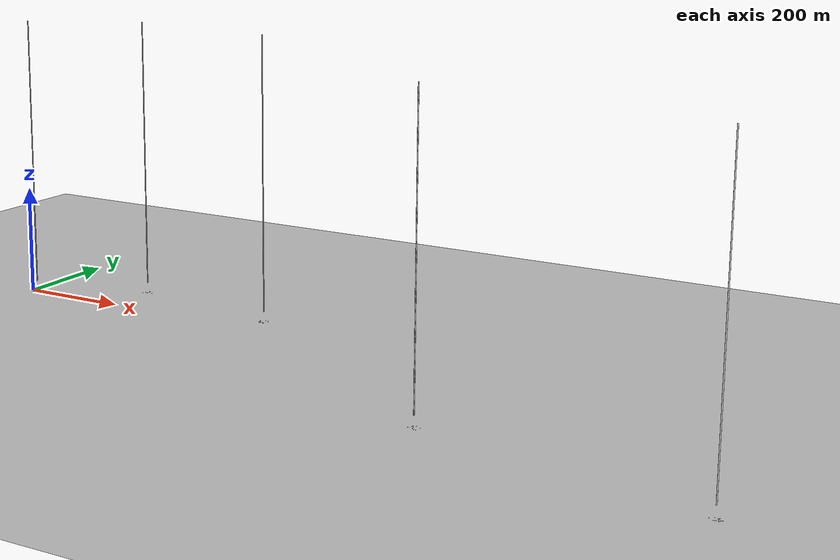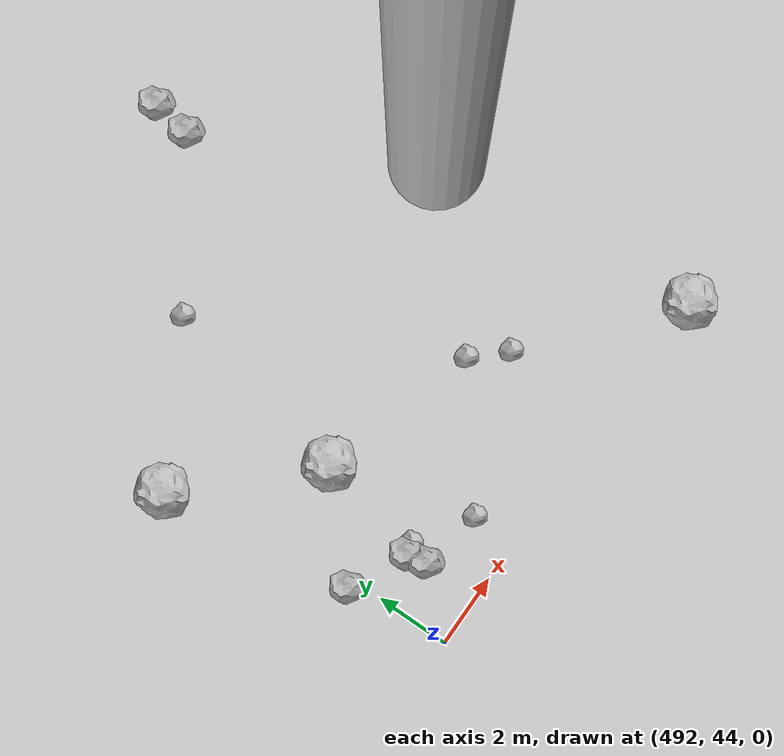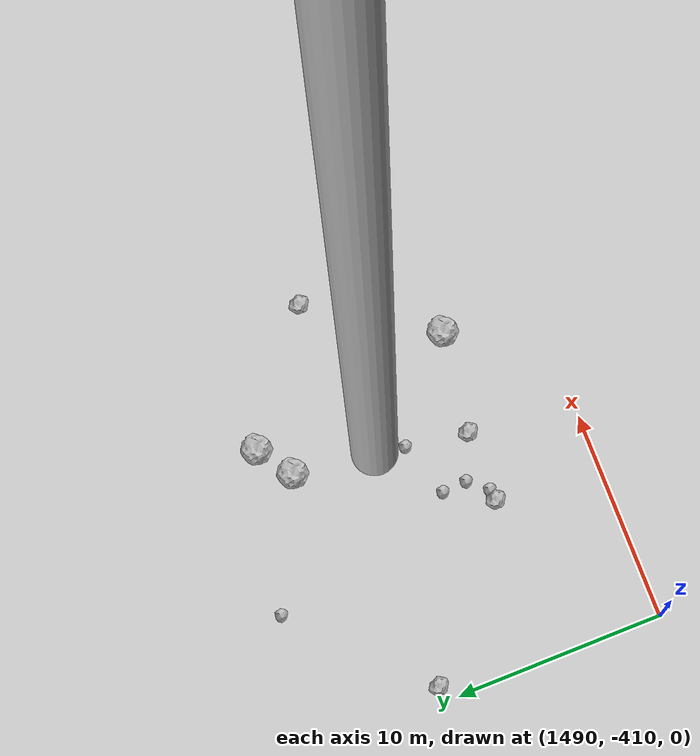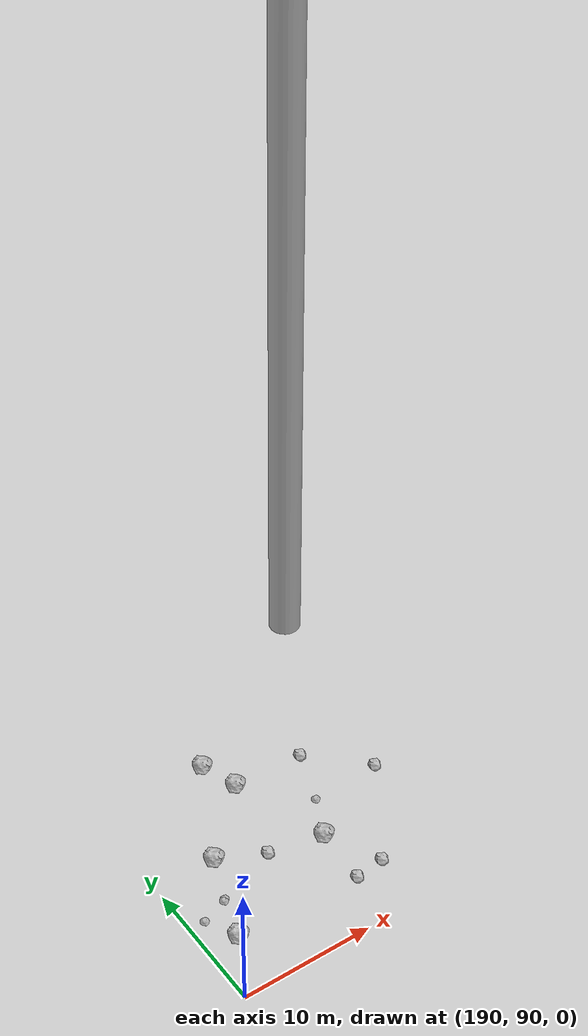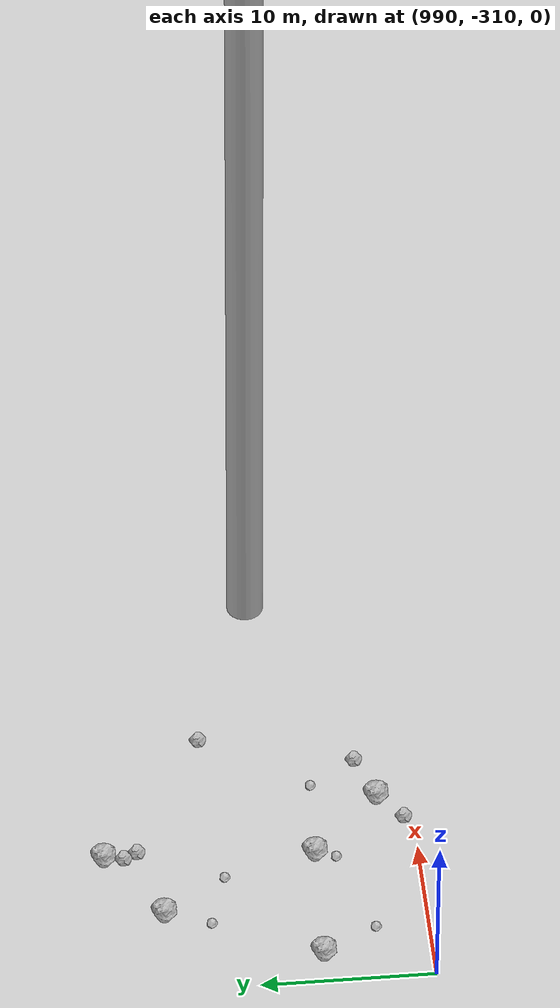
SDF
<?xml version="1.0" ?>
<sdf version="1.6">
  <world name="default">

    <include>
      <uri>model://custom_ground</uri>
    </include>

    <include>
      <uri>model://sun</uri>
    </include>

    <spherical_coordinates>
      <surface_model>EARTH_WGS84</surface_model>
      <latitude_deg>38.161479</latitude_deg>
      <longitude_deg>-122.454630</longitude_deg>
      <elevation>488.0</elevation>
      <heading_deg>90</heading_deg>
    </spherical_coordinates>

    <model name="rock1_0_0">
      <include>
        <uri>model://rock1</uri>
        <pose>1.847624893492319 -2.6303471239223057 0.5 0 0 0</pose>
      </include>
    </model>
    <model name="rock1_0_1">
      <include>
        <uri>model://rock1</uri>
        <pose>9.008583903541377 -9.185290051601374 0.5 0 0 0</pose>
      </include>
    </model>
    <model name="rock1_0_2">
      <include>
        <uri>model://rock1</uri>
        <pose>15.669937923732544 -5.1172285593576365 0.5 0 0 0</pose>
      </include>
    </model>
    <model name="rock1_0_3">
      <include>
        <uri>model://rock1</uri>
        <pose>5.000161576270186 -7.041355510667442 0.5 0 0 0</pose>
      </include>
    </model>
    <model name="rock1_0_4">
      <include>
        <uri>model://rock1</uri>
        <pose>11.049892212072344 5.825297447228763 0.5 0 0 0</pose>
      </include>
    </model>
    <model name="rock2_0_0">
      <include>
        <uri>model://rock2</uri>
        <pose>16.454082541111664 0.10624525727924983 0.3 0 0 0</pose>
      </include>
    </model>
    <model name="rock2_0_1">
      <include>
        <uri>model://rock2</uri>
        <pose>4.977025990394179 -0.059792357439778954 0.3 0 0 0</pose>
      </include>
    </model>
    <model name="rock2_0_2">
      <include>
        <uri>model://rock2</uri>
        <pose>16.862069681529366 0.30964639470345645 0.3 0 0 0</pose>
      </include>
    </model>
    <model name="rock2_0_3">
      <include>
        <uri>model://rock2</uri>
        <pose>19.00902730430467 -3.0329334566437733 0.3 0 0 0</pose>
      </include>
    </model>
    <model name="rock2_0_4">
      <include>
        <uri>model://rock2</uri>
        <pose>12.39956895667898 7.287267485126378 0.3 0 0 0</pose>
      </include>
    </model>
    <model name="rock3_0_0">
      <include>
        <uri>model://rock3</uri>
        <pose>14.769544572731373 -4.103665230971676 0.2 0 0 0</pose>
      </include>
    </model>
    <model name="rock3_0_1">
      <include>
        <uri>model://rock3</uri>
        <pose>7.274592004736036 7.151699748732241 0.2 0 0 0</pose>
      </include>
    </model>
    <model name="rock3_0_2">
      <include>
        <uri>model://rock3</uri>
        <pose>4.424943852647125 0.3419693925517979 0.2 0 0 0</pose>
      </include>
    </model>
    <model name="rock3_0_3">
      <include>
        <uri>model://rock3</uri>
        <pose>1.0667856122183172 2.873831579388071 0.2 0 0 0</pose>
      </include>
    </model>
    <model name="rock3_0_4">
      <include>
        <uri>model://rock3</uri>
        <pose>13.246002871547066 7.901397685399655 0.2 0 0 0</pose>
      </include>
    </model>
    <model name="rock1_1_0">
      <include>
        <uri>model://rock1</uri>
        <pose>194.664354609973 100.64466646623175 0.5 0 0 0</pose>
      </include>
    </model>
    <model name="rock1_1_1">
      <include>
        <uri>model://rock1</uri>
        <pose>202.19994997514422 98.15291370395585 0.5 0 0 0</pose>
      </include>
    </model>
    <model name="rock1_1_2">
      <include>
        <uri>model://rock1</uri>
        <pose>192.37797937840142 94.18973639324409 0.5 0 0 0</pose>
      </include>
    </model>
    <model name="rock1_1_3">
      <include>
        <uri>model://rock1</uri>
        <pose>198.7196898163804 108.37296060081385 0.5 0 0 0</pose>
      </include>
    </model>
    <model name="rock1_1_4">
      <include>
        <uri>model://rock1</uri>
        <pose>199.69300903419634 105.50620538462415 0.5 0 0 0</pose>
      </include>
    </model>
    <model name="rock2_1_0">
      <include>
        <uri>model://rock2</uri>
        <pose>198.02481134053994 99.08673959093537 0.3 0 0 0</pose>
      </include>
    </model>
    <model name="rock2_1_1">
      <include>
        <uri>model://rock2</uri>
        <pose>204.16463653267846 94.14965391687505 0.3 0 0 0</pose>
      </include>
    </model>
    <model name="rock2_1_2">
      <include>
        <uri>model://rock2</uri>
        <pose>209.06963544717797 101.55360941788055 0.3 0 0 0</pose>
      </include>
    </model>
    <model name="rock2_1_3">
      <include>
        <uri>model://rock2</uri>
        <pose>201.852689926347 93.8651914882996 0.3 0 0 0</pose>
      </include>
    </model>
    <model name="rock2_1_4">
      <include>
        <uri>model://rock2</uri>
        <pose>205.18001816557387 105.41128549780441 0.3 0 0 0</pose>
      </include>
    </model>
    <model name="rock3_1_0">
      <include>
        <uri>model://rock3</uri>
        <pose>193.31276235585105 97.35735550706984 0.2 0 0 0</pose>
      </include>
    </model>
    <model name="rock3_1_1">
      <include>
        <uri>model://rock3</uri>
        <pose>203.65573078288168 101.24920850816196 0.2 0 0 0</pose>
      </include>
    </model>
    <model name="rock3_1_2">
      <include>
        <uri>model://rock3</uri>
        <pose>193.20947857541142 97.2554920281937 0.2 0 0 0</pose>
      </include>
    </model>
    <model name="rock3_1_3">
      <include>
        <uri>model://rock3</uri>
        <pose>191.16434467650694 96.51267050478546 0.2 0 0 0</pose>
      </include>
    </model>
    <model name="rock3_1_4">
      <include>
        <uri>model://rock3</uri>
        <pose>199.88065659750686 105.952205609244 0.2 0 0 0</pose>
      </include>
    </model>
    <model name="rock1_2_0">
      <include>
        <uri>model://rock1</uri>
        <pose>505.54593761639825 55.61448670322314 0.5 0 0 0</pose>
      </include>
    </model>
    <model name="rock1_2_1">
      <include>
        <uri>model://rock1</uri>
        <pose>504.18217297581174 57.3713864275379 0.5 0 0 0</pose>
      </include>
    </model>
    <model name="rock1_2_2">
      <include>
        <uri>model://rock1</uri>
        <pose>494.0988770357594 49.013264881919596 0.5 0 0 0</pose>
      </include>
    </model>
    <model name="rock1_2_3">
      <include>
        <uri>model://rock1</uri>
        <pose>491.0930304340576 52.10352055150673 0.5 0 0 0</pose>
      </include>
    </model>
    <model name="rock1_2_4">
      <include>
        <uri>model://rock1</uri>
        <pose>502.78286717460736 43.83597331519561 0.5 0 0 0</pose>
      </include>
    </model>
    <model name="rock2_2_0">
      <include>
        <uri>model://rock2</uri>
        <pose>493.4317326313458 45.59573450571534 0.3 0 0 0</pose>
      </include>
    </model>
    <model name="rock2_2_1">
      <include>
        <uri>model://rock2</uri>
        <pose>498.9690633293399 56.99410507547191 0.3 0 0 0</pose>
      </include>
    </model>
    <model name="rock2_2_2">
      <include>
        <uri>model://rock2</uri>
        <pose>499.1215442636108 58.02658110437978 0.3 0 0 0</pose>
      </include>
    </model>
    <model name="rock2_2_3">
      <include>
        <uri>model://rock2</uri>
        <pose>493.3287582269976 46.10041364949269 0.3 0 0 0</pose>
      </include>
    </model>
    <model name="rock2_2_4">
      <include>
        <uri>model://rock2</uri>
        <pose>491.7633522317268 46.86181116578269 0.3 0 0 0</pose>
      </include>
    </model>
    <model name="rock3_2_0">
      <include>
        <uri>model://rock3</uri>
        <pose>499.1133929753987 46.86907653087308 0.2 0 0 0</pose>
      </include>
    </model>
    <model name="rock3_2_1">
      <include>
        <uri>model://rock3</uri>
        <pose>495.0303354134359 54.29071716421359 0.2 0 0 0</pose>
      </include>
    </model>
    <model name="rock3_2_2">
      <include>
        <uri>model://rock3</uri>
        <pose>495.1003771429886 45.202625688037784 0.2 0 0 0</pose>
      </include>
    </model>
    <model name="rock3_2_3">
      <include>
        <uri>model://rock3</uri>
        <pose>493.60583509471275 46.1494197995776 0.2 0 0 0</pose>
      </include>
    </model>
    <model name="rock3_2_4">
      <include>
        <uri>model://rock3</uri>
        <pose>498.32064058308964 47.71811556563089 0.2 0 0 0</pose>
      </include>
    </model>
    <model name="rock1_3_0">
      <include>
        <uri>model://rock1</uri>
        <pose>995.9501168326144 -295.00678546659475 0.5 0 0 0</pose>
      </include>
    </model>
    <model name="rock1_3_1">
      <include>
        <uri>model://rock1</uri>
        <pose>1000.0154037328228 -304.01511839448074 0.5 0 0 0</pose>
      </include>
    </model>
    <model name="rock1_3_2">
      <include>
        <uri>model://rock1</uri>
        <pose>1000.5930601398452 -291.8750618586652 0.5 0 0 0</pose>
      </include>
    </model>
    <model name="rock1_3_3">
      <include>
        <uri>model://rock1</uri>
        <pose>992.1596363540878 -303.7797059235827 0.5 0 0 0</pose>
      </include>
    </model>
    <model name="rock1_3_4">
      <include>
        <uri>model://rock1</uri>
        <pose>1004.2566622584434 -307.97185454277155 0.5 0 0 0</pose>
      </include>
    </model>
    <model name="rock2_3_0">
      <include>
        <uri>model://rock2</uri>
        <pose>1000.3197815038525 -293.0133692616998 0.3 0 0 0</pose>
      </include>
    </model>
    <model name="rock2_3_1">
      <include>
        <uri>model://rock2</uri>
        <pose>1000.7513323361692 -293.80623992560385 0.3 0 0 0</pose>
      </include>
    </model>
    <model name="rock2_3_2">
      <include>
        <uri>model://rock2</uri>
        <pose>1002.3285077346109 -309.3943124177194 0.3 0 0 0</pose>
      </include>
    </model>
    <model name="rock2_3_3">
      <include>
        <uri>model://rock2</uri>
        <pose>1007.1574093582486 -306.97369785807354 0.3 0 0 0</pose>
      </include>
    </model>
    <model name="rock2_3_4">
      <include>
        <uri>model://rock2</uri>
        <pose>1009.523229085051 -298.04878541769864 0.3 0 0 0</pose>
      </include>
    </model>
    <model name="rock3_3_0">
      <include>
        <uri>model://rock3</uri>
        <pose>1005.3202940837873 -304.28591164382675 0.2 0 0 0</pose>
      </include>
    </model>
    <model name="rock3_3_1">
      <include>
        <uri>model://rock3</uri>
        <pose>994.8653662436232 -297.68095097728195 0.2 0 0 0</pose>
      </include>
    </model>
    <model name="rock3_3_2">
      <include>
        <uri>model://rock3</uri>
        <pose>998.3968924429663 -298.7068792570992 0.2 0 0 0</pose>
      </include>
    </model>
    <model name="rock3_3_3">
      <include>
        <uri>model://rock3</uri>
        <pose>999.507826884584 -305.23881009346684 0.2 0 0 0</pose>
      </include>
    </model>
    <model name="rock3_3_4">
      <include>
        <uri>model://rock3</uri>
        <pose>993.8026121967973 -306.95686906599076 0.2 0 0 0</pose>
      </include>
    </model>
    <model name="rock1_4_0">
      <include>
        <uri>model://rock1</uri>
        <pose>1507.4740139266787 -402.1261360922767 0.5 0 0 0</pose>
      </include>
    </model>
    <model name="rock1_4_1">
      <include>
        <uri>model://rock1</uri>
        <pose>1504.1080210547605 -395.5757278275644 0.5 0 0 0</pose>
      </include>
    </model>
    <model name="rock1_4_2">
      <include>
        <uri>model://rock1</uri>
        <pose>1507.9768888564129 -401.9492388575439 0.5 0 0 0</pose>
      </include>
    </model>
    <model name="rock1_4_3">
      <include>
        <uri>model://rock1</uri>
        <pose>1506.0019840568034 -405.6144015025283 0.5 0 0 0</pose>
      </include>
    </model>
    <model name="rock1_4_4">
      <include>
        <uri>model://rock1</uri>
        <pose>1502.4563756499067 -396.7178353991738 0.5 0 0 0</pose>
      </include>
    </model>
    <model name="rock2_4_0">
      <include>
        <uri>model://rock2</uri>
        <pose>1509.655691551419 -399.90631800601255 0.3 0 0 0</pose>
      </include>
    </model>
    <model name="rock2_4_1">
      <include>
        <uri>model://rock2</uri>
        <pose>1490.7925211033532 -399.3095690414662 0.3 0 0 0</pose>
      </include>
    </model>
    <model name="rock2_4_2">
      <include>
        <uri>model://rock2</uri>
        <pose>1497.8131576216567 -404.9727113229346 0.3 0 0 0</pose>
      </include>
    </model>
    <model name="rock2_4_3">
      <include>
        <uri>model://rock2</uri>
        <pose>1504.6892782053137 -401.50939653793165 0.3 0 0 0</pose>
      </include>
    </model>
    <model name="rock2_4_4">
      <include>
        <uri>model://rock2</uri>
        <pose>1501.20684167116 -404.96442246790656 0.3 0 0 0</pose>
      </include>
    </model>
    <model name="rock3_4_0">
      <include>
        <uri>model://rock3</uri>
        <pose>1501.6478538095544 -402.03484364698824 0.2 0 0 0</pose>
      </include>
    </model>
    <model name="rock3_4_1">
      <include>
        <uri>model://rock3</uri>
        <pose>1496.5245864540707 -393.823137547126 0.2 0 0 0</pose>
      </include>
    </model>
    <model name="rock3_4_2">
      <include>
        <uri>model://rock3</uri>
        <pose>1498.3466046332396 -404.92077507508026 0.2 0 0 0</pose>
      </include>
    </model>
    <model name="rock3_4_3">
      <include>
        <uri>model://rock3</uri>
        <pose>1499.1030676926396 -404.0468995154803 0.2 0 0 0</pose>
      </include>
    </model>
    <model name="rock3_4_4">
      <include>
        <uri>model://rock3</uri>
        <pose>1499.0383528106108 -402.86377139823236 0.2 0 0 0</pose>
      </include>
    </model>

    <model name="cylinder_1">
      <static>true</static>
      <link name="link">
        <visual name="visual">
          <geometry>
            <cylinder>
              <radius>1</radius>
              <length>500</length>
            </cylinder>
          </geometry>
        </visual>
      </link>
      <pose>10 0 270 0 0 0</pose>
    </model>

    <model name="cylinder_2">
      <static>true</static>
      <link name="link">
        <visual name="visual">
          <geometry>
            <cylinder>
              <radius>1</radius>
              <length>500</length>
            </cylinder>
          </geometry>
        </visual>
      </link>
      <pose>200 100 270 0 0 0</pose>
    </model>

    <model name="cylinder_3">
      <static>true</static>
      <link name="link">
        <visual name="visual">
          <geometry>
            <cylinder>
              <radius>1</radius>
              <length>500</length>
            </cylinder>
          </geometry>
        </visual>
      </link>
      <pose>500 50 270 0 0 0</pose>
    </model>

    <model name="cylinder_4">
      <static>true</static>
      <link name="link">
        <visual name="visual">
          <geometry>
            <cylinder>
              <radius>1</radius>
              <length>500</length>
            </cylinder>
          </geometry>
        </visual>
      </link>
      <pose>1000 -300 270 0 0 0</pose>
    </model>

    <model name="cylinder_5">
      <static>true</static>
      <link name="link">
        <visual name="visual">
          <geometry>
            <cylinder>
              <radius>1</radius>
              <length>500</length>
            </cylinder>
          </geometry>
        </visual>
      </link>
      <pose>1500 -400 270 0 0 0</pose>
    </model>

  </world>
</sdf>

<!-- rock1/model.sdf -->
<sdf version="1.6">
  <model name="rock1">
    <static>true</static> <!-- Set to true if the model should not move -->
    <pose>0 0 0 0 0 0</pose>

    <!--z offset is 0.5 for full scale-->

    <link name="link">
      <collision name="rock1_collision">
        <geometry>
          <mesh>
            <uri>model://meshes/rock1.dae</uri>
          </mesh>
        </geometry>
      </collision>
      <visual name="rock1_visual">
        <geometry>
          <mesh>
            <uri>model://meshes/rock1.dae</uri>
          </mesh>
        </geometry>
        <material>
          <script>
            <uri>model://materials/scripts/sand_pebbles.material</uri>
            <name>custom_ground/Image</name>
          </script>
        </material>
      </visual>
    </link>
  </model>
</sdf>

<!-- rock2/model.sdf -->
<sdf version="1.6">
  <model name="rock2">
    <static>true</static> <!-- Set to true if the model should not move -->
    <pose>0 0 0 0 0 0</pose>

    <!--z offset is 0.3 for full scale-->

    <link name="link">
      <collision name="rock2_collision">
        <geometry>
          <mesh>
            <uri>model://meshes/rock2.dae</uri>
          </mesh>
        </geometry>
      </collision>
      <visual name="rock2_visual">
        <geometry>
          <mesh>
            <uri>model://meshes/rock2.dae</uri>
          </mesh>
        </geometry>
        <material>
          <script>
            <uri>model://materials/scripts/sand_pebbles.material</uri>
            <name>custom_ground/Image</name>
          </script>
        </material>
      </visual>
    </link>
  </model>
</sdf>

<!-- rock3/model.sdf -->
<sdf version="1.6">
  <model name="rock3">
    <static>true</static> <!-- Set to true if the model should not move -->
    <pose>0 0 0 0 0 0</pose>

    <!--z offset is 0.2 for full scale-->

    <link name="link">
      <collision name="rock3_collision">
        <geometry>
          <mesh>
            <uri>model://meshes/rock3.dae</uri>
          </mesh>
        </geometry>
      </collision>
      <visual name="rock3_visual">
        <geometry>
          <mesh>
            <uri>model://meshes/rock3.dae</uri>
          </mesh>
        </geometry>
        <material>
          <script>
            <uri>model://materials/scripts/sand_pebbles.material</uri>
            <name>custom_ground/Image</name>
          </script>
        </material>
      </visual>
    </link>
  </model>
</sdf>

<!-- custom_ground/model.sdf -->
<sdf version="1.6">
  <model name="custom_ground">
    <static>true</static> <!-- Ground is static and immovable -->
    <link name="ground_link">
      <pose>240 0 0 0 0 0</pose> <!-- Position and orientation relative to the world -->
      <!-- Visual Representation -->
      <visual name="ground_visual">
        <geometry>
          <plane>
            <normal>0 0 1</normal> <!-- Upward facing plane -->
            <size>500 500</size> <!-- Size of the plane -->
          </plane>
        </geometry>
        <material>
          <script>
            <uri>model://materials/scripts/sand_pebbles.material</uri>
            <name>custom_ground/Image</name>
          </script>
        </material>
      </visual>

      <!-- Collision Representation -->
      <collision name="ground_collision">
        <geometry>
          <plane>
            <normal>0 0 1</normal>
            <size>100 100</size>
          </plane>
        </geometry>
      </collision>

    </link>
  </model>
</sdf>
